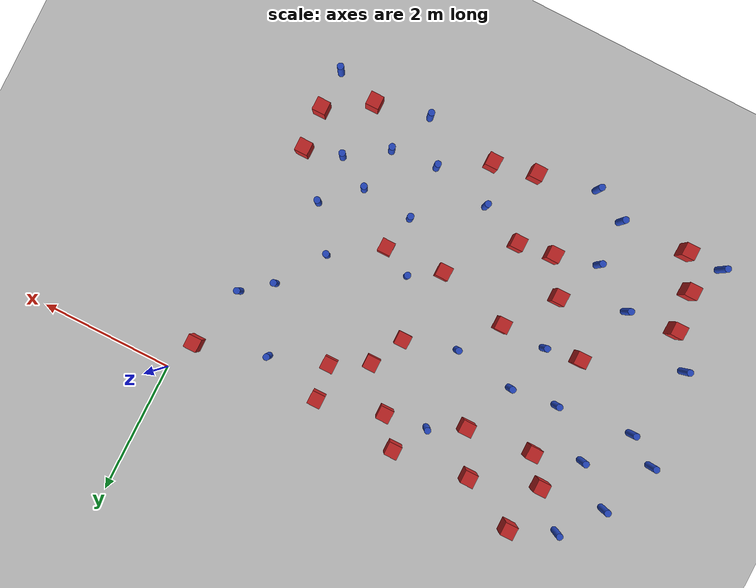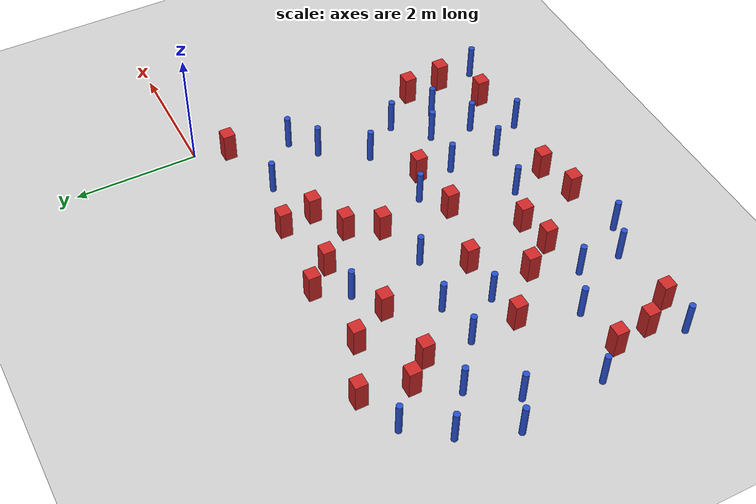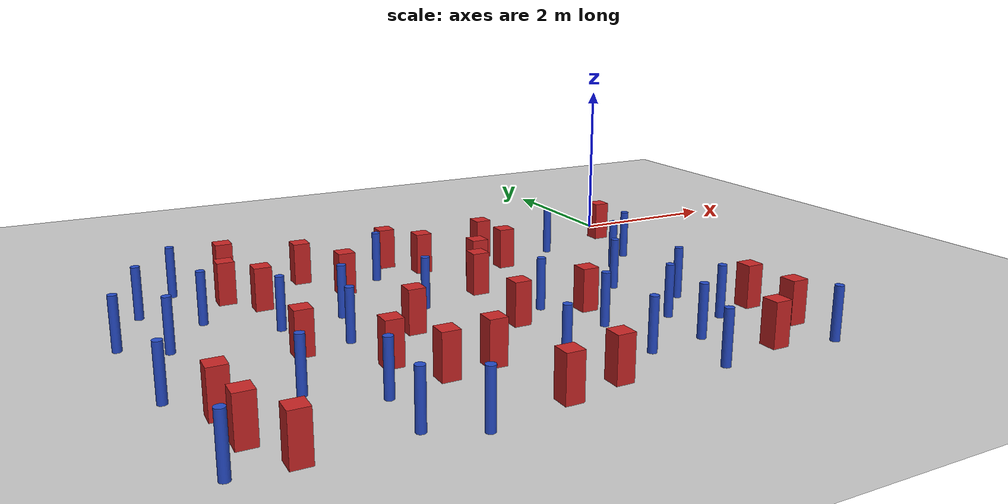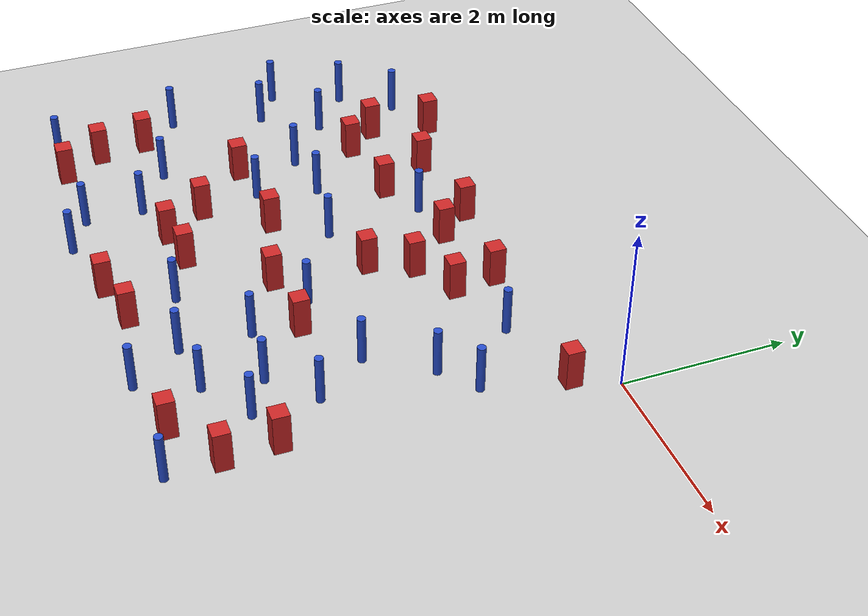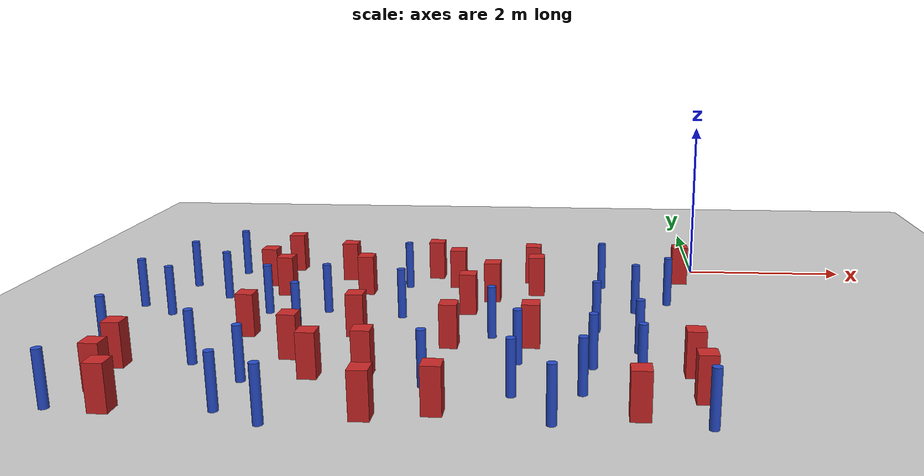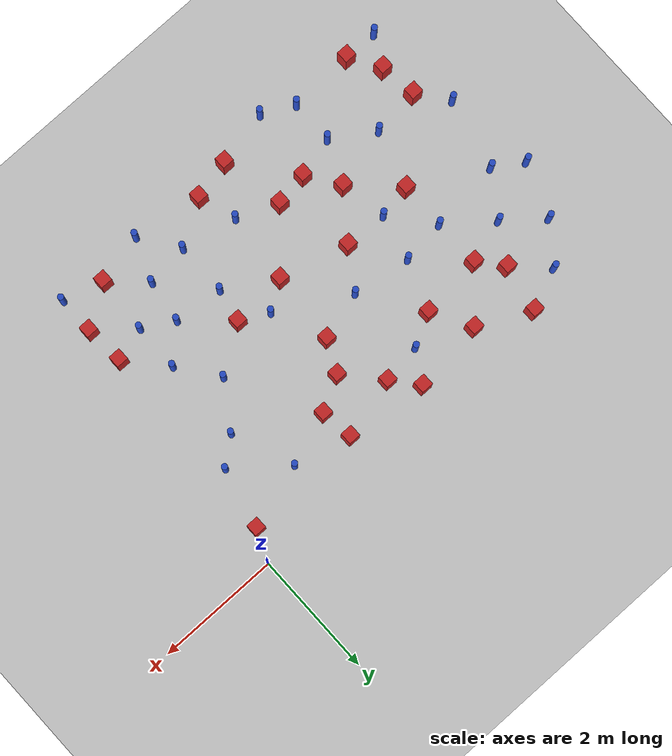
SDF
<sdf version="1.6">
 <world name="default">
  <model name="ground_plane">
   <static>1</static>
   <link name="link">
    <collision name="collision">
     <geometry><plane><normal>0 0 1</normal><size>100 100</size></plane></geometry>
     <surface><friction><ode><mu>100</mu><mu2>50</mu2></ode></friction></surface>
    </collision>
    <visual name="visual">
     <cast_shadows>0</cast_shadows>
     <geometry><plane><normal>0 0 1</normal><size>100 100</size></plane></geometry>
     <material>
      <ambient>1.0 1.0 1.0 1.0</ambient>
      <diffuse>0.8 0.8 0.8 1.0</diffuse>
      <specular>0.01 0.01 0.01 1.000000</specular>
     </material>
    </visual>
   </link>
  </model>
  <model name="square_post_obstacle1">
   <static>true</static>
   <pose>-5.9665953914 -4.91528763904 1.91545236811e-07 -7.35059704564e-06 1.12565212e-07 2.39332434364e-05</pose>
   <link name="link">
    <pose>0 0 0.25 0 -0 0</pose>
    <inertial>
     <mass>100</mass>
     <inertia>
      <ixx>0.166667</ixx>
      <ixy>0</ixy>
      <ixz>0</ixz>
      <iyy>0.166667</iyy>
      <iyz>0</iyz>
      <izz>0.166667</izz>
     </inertia>
    </inertial>
    <collision name="collision"><geometry><box><size>.2 .2 .5</size></box></geometry></collision>
    <visual name="visual">
     <geometry><box><size>.2 .2 .5</size></box></geometry>
     <material>
      <script><name>Gazebo/Red</name><uri>file://media/materials/scripts/gazebo.material</uri></script>
     </material>
    </visual>
   </link>
  </model>
  <model name="pole_obstacle6">
   <static>true</static>
   <pose>-1.34297444694 -2.51298891323 7.38925637345e-09 -8.47170692799e-08 1.24976765053e-08 -1.74513093017e-07</pose>
   <link name="link">
    <pose>0 0 0.3 0 -0 0</pose>
    <inertial>
     <mass>1</mass>
     <inertia><ixx>0.145833</ixx><ixy>0</ixy><ixz>0</ixz><iyy>0.145833</iyy><iyz>0</iyz><izz>0.125</izz></inertia>
    </inertial>
    <collision name="collision">
     <geometry><cylinder><radius>0.05</radius><length>.6</length></cylinder></geometry>
    </collision>
    <visual name="visual">
     <geometry><cylinder><radius>0.05</radius><length>.6</length></cylinder></geometry>
     <material>
      <script><name>Gazebo/Blue</name><uri>file://media/materials/scripts/gazebo.material</uri></script>
     </material>
    </visual>
   </link>
  </model>
  <model name="square_post_obstacle6">
   <static>true</static>
   <pose>-6.26178167945 -4.42269500261 1.91545236811e-07 -7.35059704564e-06 1.12565212e-07 2.39332434364e-05</pose>
   <link name="link">
    <pose>0 0 0.25 0 -0 0</pose>
    <inertial>
     <mass>100</mass>
     <inertia>
      <ixx>0.166667</ixx>
      <ixy>0</ixy>
      <ixz>0</ixz>
      <iyy>0.166667</iyy>
      <iyz>0</iyz>
      <izz>0.166667</izz>
     </inertia>
    </inertial>
    <collision name="collision"><geometry><box><size>.2 .2 .5</size></box></geometry></collision>
    <visual name="visual">
     <geometry><box><size>.2 .2 .5</size></box></geometry>
     <material>
      <script><name>Gazebo/Red</name><uri>file://media/materials/scripts/gazebo.material</uri></script>
     </material>
    </visual>
   </link>
  </model>
  <model name="pole_obstacle14">
   <static>true</static>
   <pose>-3.07545516667 -4.19201038177 7.38925637345e-09 -8.47170692794e-08 1.24976764468e-08 -1.7451309304e-07</pose>
   <link name="link">
    <pose>0 0 0.3 0 -0 0</pose>
    <inertial>
     <mass>1</mass>
     <inertia><ixx>0.145833</ixx><ixy>0</ixy><ixz>0</ixz><iyy>0.145833</iyy><iyz>0</iyz><izz>0.125</izz></inertia>
    </inertial>
    <collision name="collision">
     <geometry><cylinder><radius>0.05</radius><length>.6</length></cylinder></geometry>
    </collision>
    <visual name="visual">
     <geometry><cylinder><radius>0.05</radius><length>.6</length></cylinder></geometry>
     <material>
      <script><name>Gazebo/Blue</name><uri>file://media/materials/scripts/gazebo.material</uri></script>
     </material>
    </visual>
   </link>
  </model>
  <model name="pole_obstacle15">
   <static>true</static>
   <pose>-0.898604787767 -3.89439577498 7.38925637345e-09 -8.47170692799e-08 1.2497676509e-08 -1.74513093016e-07</pose>
   <link name="link">
    <pose>0 0 0.3 0 -0 0</pose>
    <inertial>
     <mass>1</mass>
     <inertia><ixx>0.145833</ixx><ixy>0</ixy><ixz>0</ixz><iyy>0.145833</iyy><iyz>0</iyz><izz>0.125</izz></inertia>
    </inertial>
    <collision name="collision">
     <geometry><cylinder><radius>0.05</radius><length>.6</length></cylinder></geometry>
    </collision>
    <visual name="visual">
     <geometry><cylinder><radius>0.05</radius><length>.6</length></cylinder></geometry>
     <material>
      <script><name>Gazebo/Blue</name><uri>file://media/materials/scripts/gazebo.material</uri></script>
     </material>
    </visual>
   </link>
  </model>
  <model name="pole_obstacle18">
   <static>true</static>
   <pose>-0.885350081492 -3.13839814819 7.38925637345e-09 -8.47170692799e-08 1.2497676509e-08 -1.74513093016e-07</pose>
   <link name="link">
    <pose>0 0 0.3 0 -0 0</pose>
    <inertial>
     <mass>1</mass>
     <inertia><ixx>0.145833</ixx><ixy>0</ixy><ixz>0</ixz><iyy>0.145833</iyy><iyz>0</iyz><izz>0.125</izz></inertia>
    </inertial>
    <collision name="collision">
     <geometry><cylinder><radius>0.05</radius><length>.6</length></cylinder></geometry>
    </collision>
    <visual name="visual">
     <geometry><cylinder><radius>0.05</radius><length>.6</length></cylinder></geometry>
     <material>
      <script><name>Gazebo/Blue</name><uri>file://media/materials/scripts/gazebo.material</uri></script>
     </material>
    </visual>
   </link>
  </model>
  <model name="pole_obstacle20">
   <static>true</static>
   <pose>-6.72067759787 -3.35733586468 7.38925637345e-09 -8.47170692798e-08 1.24976764937e-08 -1.74513093023e-07</pose>
   <link name="link">
    <pose>0 0 0.3 0 -0 0</pose>
    <inertial>
     <mass>1</mass>
     <inertia><ixx>0.145833</ixx><ixy>0</ixy><ixz>0</ixz><iyy>0.145833</iyy><iyz>0</iyz><izz>0.125</izz></inertia>
    </inertial>
    <collision name="collision">
     <geometry><cylinder><radius>0.05</radius><length>.6</length></cylinder></geometry>
    </collision>
    <visual name="visual">
     <geometry><cylinder><radius>0.05</radius><length>.6</length></cylinder></geometry>
     <material>
      <script><name>Gazebo/Blue</name><uri>file://media/materials/scripts/gazebo.material</uri></script>
     </material>
    </visual>
   </link>
  </model>
  <model name="pole_obstacle29">
   <static>true</static>
   <pose>-1.49146786509 -4.29631459783 7.38925637345e-09 -8.47170692799e-08 1.24976765033e-08 -1.74513093018e-07</pose>
   <link name="link">
    <pose>0 0 0.3 0 -0 0</pose>
    <inertial>
     <mass>1</mass>
     <inertia><ixx>0.145833</ixx><ixy>0</ixy><ixz>0</ixz><iyy>0.145833</iyy><iyz>0</iyz><izz>0.125</izz></inertia>
    </inertial>
    <collision name="collision">
     <geometry><cylinder><radius>0.05</radius><length>.6</length></cylinder></geometry>
    </collision>
    <visual name="visual">
     <geometry><cylinder><radius>0.05</radius><length>.6</length></cylinder></geometry>
     <material>
      <script><name>Gazebo/Blue</name><uri>file://media/materials/scripts/gazebo.material</uri></script>
     </material>
    </visual>
   </link>
  </model>
  <model name="square_post_obstacle27">
   <static>true</static>
   <pose>-4.62665792929 -0.576814760097 1.91545236811e-07 -7.35059704564e-06 1.12565212e-07 2.39332434364e-05</pose>
   <link name="link">
    <pose>0 0 0.25 0 -0 0</pose>
    <inertial>
     <mass>100</mass>
     <inertia>
      <ixx>0.166667</ixx>
      <ixy>0</ixy>
      <ixz>0</ixz>
      <iyy>0.166667</iyy>
      <iyz>0</iyz>
      <izz>0.166667</izz>
     </inertia>
    </inertial>
    <collision name="collision"><geometry><box><size>.2 .2 .5</size></box></geometry></collision>
    <visual name="visual">
     <geometry><box><size>.2 .2 .5</size></box></geometry>
     <material>
      <script><name>Gazebo/Red</name><uri>file://media/materials/scripts/gazebo.material</uri></script>
     </material>
    </visual>
   </link>
  </model>
  <model name="pole_obstacle41">
   <static>true</static>
   <pose>-1.25619150162 -0.82417308649 7.38925637345e-09 -8.47170692799e-08 1.24976765075e-08 -1.74513093017e-07</pose>
   <link name="link">
    <pose>0 0 0.3 0 -0 0</pose>
    <inertial>
     <mass>1</mass>
     <inertia><ixx>0.145833</ixx><ixy>0</ixy><ixz>0</ixz><iyy>0.145833</iyy><iyz>0</iyz><izz>0.125</izz></inertia>
    </inertial>
    <collision name="collision">
     <geometry><cylinder><radius>0.05</radius><length>.6</length></cylinder></geometry>
    </collision>
    <visual name="visual">
     <geometry><cylinder><radius>0.05</radius><length>.6</length></cylinder></geometry>
     <material>
      <script><name>Gazebo/Blue</name><uri>file://media/materials/scripts/gazebo.material</uri></script>
     </material>
    </visual>
   </link>
  </model>
  <model name="square_post_obstacle35">
   <static>true</static>
   <pose>-3.72417909975 -3.91523699357 1.91545236811e-07 -7.35059704564e-06 1.12565212e-07 2.39332434364e-05</pose>
   <link name="link">
    <pose>0 0 0.25 0 -0 0</pose>
    <inertial>
     <mass>100</mass>
     <inertia>
      <ixx>0.166667</ixx>
      <ixy>0</ixy>
      <ixz>0</ixz>
      <iyy>0.166667</iyy>
      <iyz>0</iyz>
      <izz>0.166667</izz>
     </inertia>
    </inertial>
    <collision name="collision"><geometry><box><size>.2 .2 .5</size></box></geometry></collision>
    <visual name="visual">
     <geometry><box><size>.2 .2 .5</size></box></geometry>
     <material>
      <script><name>Gazebo/Red</name><uri>file://media/materials/scripts/gazebo.material</uri></script>
     </material>
    </visual>
   </link>
  </model>
  <model name="pole_obstacle46">
   <static>true</static>
   <pose>-5.99376689628 -1.52722841999 7.38925637345e-09 -8.471706928e-08 1.24976765134e-08 -1.74513093015e-07</pose>
   <link name="link">
    <pose>0 0 0.3 0 -0 0</pose>
    <inertial>
     <mass>1</mass>
     <inertia><ixx>0.145833</ixx><ixy>0</ixy><ixz>0</ixz><iyy>0.145833</iyy><iyz>0</iyz><izz>0.125</izz></inertia>
    </inertial>
    <collision name="collision">
     <geometry><cylinder><radius>0.05</radius><length>.6</length></cylinder></geometry>
    </collision>
    <visual name="visual">
     <geometry><cylinder><radius>0.05</radius><length>.6</length></cylinder></geometry>
     <material>
      <script><name>Gazebo/Blue</name><uri>file://media/materials/scripts/gazebo.material</uri></script>
     </material>
    </visual>
   </link>
  </model>
  <model name="pole_obstacle50">
   <static>true</static>
   <pose>-0.453944152029 -1.47232478835 7.38925637345e-09 -8.47170692798e-08 1.24976765013e-08 -1.7451309302e-07</pose>
   <link name="link">
    <pose>0 0 0.3 0 -0 0</pose>
    <inertial>
     <mass>1</mass>
     <inertia><ixx>0.145833</ixx><ixy>0</ixy><ixz>0</ixz><iyy>0.145833</iyy><iyz>0</iyz><izz>0.125</izz></inertia>
    </inertial>
    <collision name="collision">
     <geometry><cylinder><radius>0.05</radius><length>.6</length></cylinder></geometry>
    </collision>
    <visual name="visual">
     <geometry><cylinder><radius>0.05</radius><length>.6</length></cylinder></geometry>
     <material>
      <script><name>Gazebo/Blue</name><uri>file://media/materials/scripts/gazebo.material</uri></script>
     </material>
    </visual>
   </link>
  </model>
  <model name="square_post_obstacle43">
   <static>true</static>
   <pose>-5.29275886241 -2.82763483217 1.91545236811e-07 -7.35059704564e-06 1.12565212e-07 2.39332434364e-05</pose>
   <link name="link">
    <pose>0 0 0.25 0 -0 0</pose>
    <inertial>
     <mass>100</mass>
     <inertia>
      <ixx>0.166667</ixx>
      <ixy>0</ixy>
      <ixz>0</ixz>
      <iyy>0.166667</iyy>
      <iyz>0</iyz>
      <izz>0.166667</izz>
     </inertia>
    </inertial>
    <collision name="collision"><geometry><box><size>.2 .2 .5</size></box></geometry></collision>
    <visual name="visual">
     <geometry><box><size>.2 .2 .5</size></box></geometry>
     <material>
      <script><name>Gazebo/Red</name><uri>file://media/materials/scripts/gazebo.material</uri></script>
     </material>
    </visual>
   </link>
  </model>
  <model name="pole_obstacle61">
   <static>true</static>
   <pose>-6.91969139833 -1.91432501296 7.38925637345e-09 -8.471706928e-08 1.24976765134e-08 -1.74513093015e-07</pose>
   <link name="link">
    <pose>0 0 0.3 0 -0 0</pose>
    <inertial>
     <mass>1</mass>
     <inertia><ixx>0.145833</ixx><ixy>0</ixy><ixz>0</ixz><iyy>0.145833</iyy><iyz>0</iyz><izz>0.125</izz></inertia>
    </inertial>
    <collision name="collision">
     <geometry><cylinder><radius>0.05</radius><length>.6</length></cylinder></geometry>
    </collision>
    <visual name="visual">
     <geometry><cylinder><radius>0.05</radius><length>.6</length></cylinder></geometry>
     <material>
      <script><name>Gazebo/Blue</name><uri>file://media/materials/scripts/gazebo.material</uri></script>
     </material>
    </visual>
   </link>
  </model>
  <model name="square_post_obstacle59">
   <static>true</static>
   <pose>-2.06392335858 -2.99747650352 1.91545236811e-07 -7.35059704564e-06 1.12565212e-07 2.39332434364e-05</pose>
   <link name="link">
    <pose>0 0 0.25 0 -0 0</pose>
    <inertial>
     <mass>100</mass>
     <inertia>
      <ixx>0.166667</ixx>
      <ixy>0</ixy>
      <ixz>0</ixz>
      <iyy>0.166667</iyy>
      <iyz>0</iyz>
      <izz>0.166667</izz>
     </inertia>
    </inertial>
    <collision name="collision"><geometry><box><size>.2 .2 .5</size></box></geometry></collision>
    <visual name="visual">
     <geometry><box><size>.2 .2 .5</size></box></geometry>
     <material>
      <script><name>Gazebo/Red</name><uri>file://media/materials/scripts/gazebo.material</uri></script>
     </material>
    </visual>
   </link>
  </model>
  <model name="pole_obstacle81">
   <static>true</static>
   <pose>-0.318635826672 -4.98049582709 7.38925637345e-09 -8.471706928e-08 1.24976765079e-08 -1.74513093015e-07</pose>
   <link name="link">
    <pose>0 0 0.3 0 -0 0</pose>
    <inertial>
     <mass>1</mass>
     <inertia><ixx>0.145833</ixx><ixy>0</ixy><ixz>0</ixz><iyy>0.145833</iyy><iyz>0</iyz><izz>0.125</izz></inertia>
    </inertial>
    <collision name="collision">
     <geometry><cylinder><radius>0.05</radius><length>.6</length></cylinder></geometry>
    </collision>
    <visual name="visual">
     <geometry><cylinder><radius>0.05</radius><length>.6</length></cylinder></geometry>
     <material>
      <script><name>Gazebo/Blue</name><uri>file://media/materials/scripts/gazebo.material</uri></script>
     </material>
    </visual>
   </link>
  </model>
  <model name="square_post_obstacle72">
   <static>true</static>
   <pose>-2.09253523566 -1.12056770915 1.91545236811e-07 -7.35059704564e-06 1.12565212e-07 2.39332434364e-05</pose>
   <link name="link">
    <pose>0 0 0.25 0 -0 0</pose>
    <inertial>
     <mass>100</mass>
     <inertia>
      <ixx>0.166667</ixx>
      <ixy>0</ixy>
      <ixz>0</ixz>
      <iyy>0.166667</iyy>
      <iyz>0</iyz>
      <izz>0.166667</izz>
     </inertia>
    </inertial>
    <collision name="collision"><geometry><box><size>.2 .2 .5</size></box></geometry></collision>
    <visual name="visual">
     <geometry><box><size>.2 .2 .5</size></box></geometry>
     <material>
      <script><name>Gazebo/Red</name><uri>file://media/materials/scripts/gazebo.material</uri></script>
     </material>
    </visual>
   </link>
  </model>
  <model name="square_post_obstacle74">
   <static>true</static>
   <pose>-5.61669726903 -0.928070456622 1.91545236811e-07 -7.35059704564e-06 1.12565212e-07 2.39332434364e-05</pose>
   <link name="link">
    <pose>0 0 0.25 0 -0 0</pose>
    <inertial>
     <mass>100</mass>
     <inertia>
      <ixx>0.166667</ixx>
      <ixy>0</ixy>
      <ixz>0</ixz>
      <iyy>0.166667</iyy>
      <iyz>0</iyz>
      <izz>0.166667</izz>
     </inertia>
    </inertial>
    <collision name="collision"><geometry><box><size>.2 .2 .5</size></box></geometry></collision>
    <visual name="visual">
     <geometry><box><size>.2 .2 .5</size></box></geometry>
     <material>
      <script><name>Gazebo/Red</name><uri>file://media/materials/scripts/gazebo.material</uri></script>
     </material>
    </visual>
   </link>
  </model>
  <model name="pole_obstacle98">
   <static>true</static>
   <pose>-4.9206498968 -4.8788065518 7.38925637345e-09 -8.47170692796e-08 1.24976764786e-08 -1.74513093032e-07</pose>
   <link name="link">
    <pose>0 0 0.3 0 -0 0</pose>
    <inertial>
     <mass>1</mass>
     <inertia><ixx>0.145833</ixx><ixy>0</ixy><ixz>0</ixz><iyy>0.145833</iyy><iyz>0</iyz><izz>0.125</izz></inertia>
    </inertial>
    <collision name="collision">
     <geometry><cylinder><radius>0.05</radius><length>.6</length></cylinder></geometry>
    </collision>
    <visual name="visual">
     <geometry><cylinder><radius>0.05</radius><length>.6</length></cylinder></geometry>
     <material>
      <script><name>Gazebo/Blue</name><uri>file://media/materials/scripts/gazebo.material</uri></script>
     </material>
    </visual>
   </link>
  </model>
  <model name="pole_obstacle99">
   <static>true</static>
   <pose>-5.29137952723 -2.07930860232 7.38925637345e-09 -8.47170692798e-08 1.24976764937e-08 -1.74513093023e-07</pose>
   <link name="link">
    <pose>0 0 0.3 0 -0 0</pose>
    <inertial>
     <mass>1</mass>
     <inertia><ixx>0.145833</ixx><ixy>0</ixy><ixz>0</ixz><iyy>0.145833</iyy><iyz>0</iyz><izz>0.125</izz></inertia>
    </inertial>
    <collision name="collision">
     <geometry><cylinder><radius>0.05</radius><length>.6</length></cylinder></geometry>
    </collision>
    <visual name="visual">
     <geometry><cylinder><radius>0.05</radius><length>.6</length></cylinder></geometry>
     <material>
      <script><name>Gazebo/Blue</name><uri>file://media/materials/scripts/gazebo.material</uri></script>
     </material>
    </visual>
   </link>
  </model>
  <model name="square_post_obstacle90">
   <static>true</static>
   <pose>-0.220753854092 -0.512005402692 1.91545236811e-07 -7.35059704564e-06 1.12565212e-07 2.39332434364e-05</pose>
   <link name="link">
    <pose>0 0 0.25 0 -0 0</pose>
    <inertial>
     <mass>100</mass>
     <inertia>
      <ixx>0.166667</ixx>
      <ixy>0</ixy>
      <ixz>0</ixz>
      <iyy>0.166667</iyy>
      <iyz>0</iyz>
      <izz>0.166667</izz>
     </inertia>
    </inertial>
    <collision name="collision"><geometry><box><size>.2 .2 .5</size></box></geometry></collision>
    <visual name="visual">
     <geometry><box><size>.2 .2 .5</size></box></geometry>
     <material>
      <script><name>Gazebo/Red</name><uri>file://media/materials/scripts/gazebo.material</uri></script>
     </material>
    </visual>
   </link>
  </model>
  <model name="pole_obstacle101">
   <static>true</static>
   <pose>-2.51668406593 -2.76872930905 7.38925637345e-09 -8.47170692798e-08 1.24976764939e-08 -1.74513093025e-07</pose>
   <link name="link">
    <pose>0 0 0.3 0 -0 0</pose>
    <inertial>
     <mass>1</mass>
     <inertia><ixx>0.145833</ixx><ixy>0</ixy><ixz>0</ixz><iyy>0.145833</iyy><iyz>0</iyz><izz>0.125</izz></inertia>
    </inertial>
    <collision name="collision">
     <geometry><cylinder><radius>0.05</radius><length>.6</length></cylinder></geometry>
    </collision>
    <visual name="visual">
     <geometry><cylinder><radius>0.05</radius><length>.6</length></cylinder></geometry>
     <material>
      <script><name>Gazebo/Blue</name><uri>file://media/materials/scripts/gazebo.material</uri></script>
     </material>
    </visual>
   </link>
  </model>
  <model name="pole_obstacle107">
   <static>true</static>
   <pose>-1.76943010486 -4.98240096241 7.38925637345e-09 -8.47170692799e-08 1.24976765033e-08 -1.74513093018e-07</pose>
   <link name="link">
    <pose>0 0 0.3 0 -0 0</pose>
    <inertial>
     <mass>1</mass>
     <inertia><ixx>0.145833</ixx><ixy>0</ixy><ixz>0</ixz><iyy>0.145833</iyy><iyz>0</iyz><izz>0.125</izz></inertia>
    </inertial>
    <collision name="collision">
     <geometry><cylinder><radius>0.05</radius><length>.6</length></cylinder></geometry>
    </collision>
    <visual name="visual">
     <geometry><cylinder><radius>0.05</radius><length>.6</length></cylinder></geometry>
     <material>
      <script><name>Gazebo/Blue</name><uri>file://media/materials/scripts/gazebo.material</uri></script>
     </material>
    </visual>
   </link>
  </model>
  <model name="square_post_obstacle105">
   <static>true</static>
   <pose>-4.06142930733 -2.76066638361 1.91545236811e-07 -7.35059704564e-06 1.12565212e-07 2.39332434364e-05</pose>
   <link name="link">
    <pose>0 0 0.25 0 -0 0</pose>
    <inertial>
     <mass>100</mass>
     <inertia>
      <ixx>0.166667</ixx>
      <ixy>0</ixy>
      <ixz>0</ixz>
      <iyy>0.166667</iyy>
      <iyz>0</iyz>
      <izz>0.166667</izz>
     </inertia>
    </inertial>
    <collision name="collision"><geometry><box><size>.2 .2 .5</size></box></geometry></collision>
    <visual name="visual">
     <geometry><box><size>.2 .2 .5</size></box></geometry>
     <material>
      <script><name>Gazebo/Red</name><uri>file://media/materials/scripts/gazebo.material</uri></script>
     </material>
    </visual>
   </link>
  </model>
  <model name="square_post_obstacle109">
   <static>true</static>
   <pose>-3.47151218805 -0.443176530957 1.91545236811e-07 -7.35059704564e-06 1.12565212e-07 2.39332434364e-05</pose>
   <link name="link">
    <pose>0 0 0.25 0 -0 0</pose>
    <inertial>
     <mass>100</mass>
     <inertia>
      <ixx>0.166667</ixx>
      <ixy>0</ixy>
      <ixz>0</ixz>
      <iyy>0.166667</iyy>
      <iyz>0</iyz>
      <izz>0.166667</izz>
     </inertia>
    </inertial>
    <collision name="collision"><geometry><box><size>.2 .2 .5</size></box></geometry></collision>
    <visual name="visual">
     <geometry><box><size>.2 .2 .5</size></box></geometry>
     <material>
      <script><name>Gazebo/Red</name><uri>file://media/materials/scripts/gazebo.material</uri></script>
     </material>
    </visual>
   </link>
  </model>
  <model name="square_post_obstacle121">
   <static>true</static>
   <pose>-4.6113617156 -3.48484949745 1.91545236811e-07 -7.35059704564e-06 1.12565212e-07 2.39332434364e-05</pose>
   <link name="link">
    <pose>0 0 0.25 0 -0 0</pose>
    <inertial>
     <mass>100</mass>
     <inertia>
      <ixx>0.166667</ixx>
      <ixy>0</ixy>
      <ixz>0</ixz>
      <iyy>0.166667</iyy>
      <iyz>0</iyz>
      <izz>0.166667</izz>
     </inertia>
    </inertial>
    <collision name="collision"><geometry><box><size>.2 .2 .5</size></box></geometry></collision>
    <visual name="visual">
     <geometry><box><size>.2 .2 .5</size></box></geometry>
     <material>
      <script><name>Gazebo/Red</name><uri>file://media/materials/scripts/gazebo.material</uri></script>
     </material>
    </visual>
   </link>
  </model>
  <model name="pole_obstacle124">
   <static>true</static>
   <pose>-0.867034689101 -1.8082081701 7.38925637345e-09 -8.47170692799e-08 1.24976765033e-08 -1.7451309302e-07</pose>
   <link name="link">
    <pose>0 0 0.3 0 -0 0</pose>
    <inertial>
     <mass>1</mass>
     <inertia><ixx>0.145833</ixx><ixy>0</ixy><ixz>0</ixz><iyy>0.145833</iyy><iyz>0</iyz><izz>0.125</izz></inertia>
    </inertial>
    <collision name="collision">
     <geometry><cylinder><radius>0.05</radius><length>.6</length></cylinder></geometry>
    </collision>
    <visual name="visual">
     <geometry><cylinder><radius>0.05</radius><length>.6</length></cylinder></geometry>
     <material>
      <script><name>Gazebo/Blue</name><uri>file://media/materials/scripts/gazebo.material</uri></script>
     </material>
    </visual>
   </link>
  </model>
  <model name="pole_obstacle136">
   <static>true</static>
   <pose>-1.38850623863 -3.61622420832 7.38925637345e-09 -8.47170692799e-08 1.24976765053e-08 -1.74513093017e-07</pose>
   <link name="link">
    <pose>0 0 0.3 0 -0 0</pose>
    <inertial>
     <mass>1</mass>
     <inertia><ixx>0.145833</ixx><ixy>0</ixy><ixz>0</ixz><iyy>0.145833</iyy><iyz>0</iyz><izz>0.125</izz></inertia>
    </inertial>
    <collision name="collision">
     <geometry><cylinder><radius>0.05</radius><length>.6</length></cylinder></geometry>
    </collision>
    <visual name="visual">
     <geometry><cylinder><radius>0.05</radius><length>.6</length></cylinder></geometry>
     <material>
      <script><name>Gazebo/Blue</name><uri>file://media/materials/scripts/gazebo.material</uri></script>
     </material>
    </visual>
   </link>
  </model>
  <model name="square_post_obstacle136">
   <static>true</static>
   <pose>-6.33937242744 -3.82792688996 1.91545236811e-07 -7.35059704564e-06 1.12565212e-07 2.39332434364e-05</pose>
   <link name="link">
    <pose>0 0 0.25 0 -0 0</pose>
    <inertial>
     <mass>100</mass>
     <inertia>
      <ixx>0.166667</ixx>
      <ixy>0</ixy>
      <ixz>0</ixz>
      <iyy>0.166667</iyy>
      <iyz>0</iyz>
      <izz>0.166667</izz>
     </inertia>
    </inertial>
    <collision name="collision"><geometry><box><size>.2 .2 .5</size></box></geometry></collision>
    <visual name="visual">
     <geometry><box><size>.2 .2 .5</size></box></geometry>
     <material>
      <script><name>Gazebo/Red</name><uri>file://media/materials/scripts/gazebo.material</uri></script>
     </material>
    </visual>
   </link>
  </model>
  <model name="square_post_obstacle137">
   <static>true</static>
   <pose>-2.6310140548 -1.41466564747 1.91545236811e-07 -7.35059704564e-06 1.12565212e-07 2.39332434364e-05</pose>
   <link name="link">
    <pose>0 0 0.25 0 -0 0</pose>
    <inertial>
     <mass>100</mass>
     <inertia>
      <ixx>0.166667</ixx>
      <ixy>0</ixy>
      <ixz>0</ixz>
      <iyy>0.166667</iyy>
      <iyz>0</iyz>
      <izz>0.166667</izz>
     </inertia>
    </inertial>
    <collision name="collision"><geometry><box><size>.2 .2 .5</size></box></geometry></collision>
    <visual name="visual">
     <geometry><box><size>.2 .2 .5</size></box></geometry>
     <material>
      <script><name>Gazebo/Red</name><uri>file://media/materials/scripts/gazebo.material</uri></script>
     </material>
    </visual>
   </link>
  </model>
  <model name="pole_obstacle142">
   <static>true</static>
   <pose>-4.75733904757 -2.74081186531 7.38925637345e-09 -8.47170692798e-08 1.24976764937e-08 -1.74513093023e-07</pose>
   <link name="link">
    <pose>0 0 0.3 0 -0 0</pose>
    <inertial>
     <mass>1</mass>
     <inertia><ixx>0.145833</ixx><ixy>0</ixy><ixz>0</ixz><iyy>0.145833</iyy><iyz>0</iyz><izz>0.125</izz></inertia>
    </inertial>
    <collision name="collision">
     <geometry><cylinder><radius>0.05</radius><length>.6</length></cylinder></geometry>
    </collision>
    <visual name="visual">
     <geometry><cylinder><radius>0.05</radius><length>.6</length></cylinder></geometry>
     <material>
      <script><name>Gazebo/Blue</name><uri>file://media/materials/scripts/gazebo.material</uri></script>
     </material>
    </visual>
   </link>
  </model>
  <model name="pole_obstacle146">
   <static>true</static>
   <pose>-2.18228824495 -4.37427057992 7.38925637345e-09 -8.47170692798e-08 1.24976765033e-08 -1.74513093019e-07</pose>
   <link name="link">
    <pose>0 0 0.3 0 -0 0</pose>
    <inertial>
     <mass>1</mass>
     <inertia><ixx>0.145833</ixx><ixy>0</ixy><ixz>0</ixz><iyy>0.145833</iyy><iyz>0</iyz><izz>0.125</izz></inertia>
    </inertial>
    <collision name="collision">
     <geometry><cylinder><radius>0.05</radius><length>.6</length></cylinder></geometry>
    </collision>
    <visual name="visual">
     <geometry><cylinder><radius>0.05</radius><length>.6</length></cylinder></geometry>
     <material>
      <script><name>Gazebo/Blue</name><uri>file://media/materials/scripts/gazebo.material</uri></script>
     </material>
    </visual>
   </link>
  </model>
  <model name="pole_obstacle150">
   <static>true</static>
   <pose>-3.77168111989 -0.933499570476 7.38925637345e-09 -8.471706928e-08 1.24976765177e-08 -1.74513093012e-07</pose>
   <link name="link">
    <pose>0 0 0.3 0 -0 0</pose>
    <inertial>
     <mass>1</mass>
     <inertia><ixx>0.145833</ixx><ixy>0</ixy><ixz>0</ixz><iyy>0.145833</iyy><iyz>0</iyz><izz>0.125</izz></inertia>
    </inertial>
    <collision name="collision">
     <geometry><cylinder><radius>0.05</radius><length>.6</length></cylinder></geometry>
    </collision>
    <visual name="visual">
     <geometry><cylinder><radius>0.05</radius><length>.6</length></cylinder></geometry>
     <material>
      <script><name>Gazebo/Blue</name><uri>file://media/materials/scripts/gazebo.material</uri></script>
     </material>
    </visual>
   </link>
  </model>
  <model name="square_post_obstacle145">
   <static>true</static>
   <pose>-4.26310953707 -3.99916581293 1.91545236811e-07 -7.35059704564e-06 1.12565212e-07 2.39332434364e-05</pose>
   <link name="link">
    <pose>0 0 0.25 0 -0 0</pose>
    <inertial>
     <mass>100</mass>
     <inertia>
      <ixx>0.166667</ixx>
      <ixy>0</ixy>
      <ixz>0</ixz>
      <iyy>0.166667</iyy>
      <iyz>0</iyz>
      <izz>0.166667</izz>
     </inertia>
    </inertial>
    <collision name="collision"><geometry><box><size>.2 .2 .5</size></box></geometry></collision>
    <visual name="visual">
     <geometry><box><size>.2 .2 .5</size></box></geometry>
     <material>
      <script><name>Gazebo/Red</name><uri>file://media/materials/scripts/gazebo.material</uri></script>
     </material>
    </visual>
   </link>
  </model>
  <model name="square_post_obstacle150">
   <static>true</static>
   <pose>-2.96222555149 -3.05649186935 1.91545236811e-07 -7.35059704564e-06 1.12565212e-07 2.39332434364e-05</pose>
   <link name="link">
    <pose>0 0 0.25 0 -0 0</pose>
    <inertial>
     <mass>100</mass>
     <inertia>
      <ixx>0.166667</ixx>
      <ixy>0</ixy>
      <ixz>0</ixz>
      <iyy>0.166667</iyy>
      <iyz>0</iyz>
      <izz>0.166667</izz>
     </inertia>
    </inertial>
    <collision name="collision"><geometry><box><size>.2 .2 .5</size></box></geometry></collision>
    <visual name="visual">
     <geometry><box><size>.2 .2 .5</size></box></geometry>
     <material>
      <script><name>Gazebo/Red</name><uri>file://media/materials/scripts/gazebo.material</uri></script>
     </material>
    </visual>
   </link>
  </model>
  <model name="pole_obstacle159">
   <static>true</static>
   <pose>-4.91276007358 -4.17387571632 7.38925637345e-09 -8.47170692796e-08 1.24976764786e-08 -1.74513093032e-07</pose>
   <link name="link">
    <pose>0 0 0.3 0 -0 0</pose>
    <inertial>
     <mass>1</mass>
     <inertia><ixx>0.145833</ixx><ixy>0</ixy><ixz>0</ixz><iyy>0.145833</iyy><iyz>0</iyz><izz>0.125</izz></inertia>
    </inertial>
    <collision name="collision">
     <geometry><cylinder><radius>0.05</radius><length>.6</length></cylinder></geometry>
    </collision>
    <visual name="visual">
     <geometry><cylinder><radius>0.05</radius><length>.6</length></cylinder></geometry>
     <material>
      <script><name>Gazebo/Blue</name><uri>file://media/materials/scripts/gazebo.material</uri></script>
     </material>
    </visual>
   </link>
  </model>
  <model name="pole_obstacle161">
   <static>true</static>
   <pose>-6.58614506836 -1.04851093051 7.38925637345e-09 -8.471706928e-08 1.24976765101e-08 -1.74513093015e-07</pose>
   <link name="link">
    <pose>0 0 0.3 0 -0 0</pose>
    <inertial>
     <mass>1</mass>
     <inertia><ixx>0.145833</ixx><ixy>0</ixy><ixz>0</ixz><iyy>0.145833</iyy><iyz>0</iyz><izz>0.125</izz></inertia>
    </inertial>
    <collision name="collision">
     <geometry><cylinder><radius>0.05</radius><length>.6</length></cylinder></geometry>
    </collision>
    <visual name="visual">
     <geometry><cylinder><radius>0.05</radius><length>.6</length></cylinder></geometry>
     <material>
      <script><name>Gazebo/Blue</name><uri>file://media/materials/scripts/gazebo.material</uri></script>
     </material>
    </visual>
   </link>
  </model>
  <model name="pole_obstacle162">
   <static>true</static>
   <pose>-6.12782548668 -0.441250665291 7.38925637345e-09 -8.47170692798e-08 1.24976765003e-08 -1.7451309302e-07</pose>
   <link name="link">
    <pose>0 0 0.3 0 -0 0</pose>
    <inertial>
     <mass>1</mass>
     <inertia><ixx>0.145833</ixx><ixy>0</ixy><ixz>0</ixz><iyy>0.145833</iyy><iyz>0</iyz><izz>0.125</izz></inertia>
    </inertial>
    <collision name="collision">
     <geometry><cylinder><radius>0.05</radius><length>.6</length></cylinder></geometry>
    </collision>
    <visual name="visual">
     <geometry><cylinder><radius>0.05</radius><length>.6</length></cylinder></geometry>
     <material>
      <script><name>Gazebo/Blue</name><uri>file://media/materials/scripts/gazebo.material</uri></script>
     </material>
    </visual>
   </link>
  </model>
  <model name="square_post_obstacle156">
   <static>true</static>
   <pose>-4.2762970276 -1.20666730393 1.91545236811e-07 -7.35059704564e-06 1.12565212e-07 2.39332434364e-05</pose>
   <link name="link">
    <pose>0 0 0.25 0 -0 0</pose>
    <inertial>
     <mass>100</mass>
     <inertia>
      <ixx>0.166667</ixx>
      <ixy>0</ixy>
      <ixz>0</ixz>
      <iyy>0.166667</iyy>
      <iyz>0</iyz>
      <izz>0.166667</izz>
     </inertia>
    </inertial>
    <collision name="collision"><geometry><box><size>.2 .2 .5</size></box></geometry></collision>
    <visual name="visual">
     <geometry><box><size>.2 .2 .5</size></box></geometry>
     <material>
      <script><name>Gazebo/Red</name><uri>file://media/materials/scripts/gazebo.material</uri></script>
     </material>
    </visual>
   </link>
  </model>
  <model name="square_post_obstacle168">
   <static>true</static>
   <pose>-0.964861458707 -4.78723383157 1.91545236811e-07 -7.35059704564e-06 1.12565212e-07 2.39332434364e-05</pose>
   <link name="link">
    <pose>0 0 0.25 0 -0 0</pose>
    <inertial>
     <mass>100</mass>
     <inertia>
      <ixx>0.166667</ixx>
      <ixy>0</ixy>
      <ixz>0</ixz>
      <iyy>0.166667</iyy>
      <iyz>0</iyz>
      <izz>0.166667</izz>
     </inertia>
    </inertial>
    <collision name="collision"><geometry><box><size>.2 .2 .5</size></box></geometry></collision>
    <visual name="visual">
     <geometry><box><size>.2 .2 .5</size></box></geometry>
     <material>
      <script><name>Gazebo/Red</name><uri>file://media/materials/scripts/gazebo.material</uri></script>
     </material>
    </visual>
   </link>
  </model>
  <model name="square_post_obstacle172">
   <static>true</static>
   <pose>-2.16045845289 -0.59510986876 1.91545236811e-07 -7.35059704564e-06 1.12565212e-07 2.39332434364e-05</pose>
   <link name="link">
    <pose>0 0 0.25 0 -0 0</pose>
    <inertial>
     <mass>100</mass>
     <inertia>
      <ixx>0.166667</ixx>
      <ixy>0</ixy>
      <ixz>0</ixz>
      <iyy>0.166667</iyy>
      <iyz>0</iyz>
      <izz>0.166667</izz>
     </inertia>
    </inertial>
    <collision name="collision"><geometry><box><size>.2 .2 .5</size></box></geometry></collision>
    <visual name="visual">
     <geometry><box><size>.2 .2 .5</size></box></geometry>
     <material>
      <script><name>Gazebo/Red</name><uri>file://media/materials/scripts/gazebo.material</uri></script>
     </material>
    </visual>
   </link>
  </model>
  <model name="pole_obstacle179">
   <static>true</static>
   <pose>-6.45365916004 -2.20495858029 7.38925637345e-09 -8.47170692798e-08 1.24976764937e-08 -1.74513093023e-07</pose>
   <link name="link">
    <pose>0 0 0.3 0 -0 0</pose>
    <inertial>
     <mass>1</mass>
     <inertia><ixx>0.145833</ixx><ixy>0</ixy><ixz>0</ixz><iyy>0.145833</iyy><iyz>0</iyz><izz>0.125</izz></inertia>
    </inertial>
    <collision name="collision">
     <geometry><cylinder><radius>0.05</radius><length>.6</length></cylinder></geometry>
    </collision>
    <visual name="visual">
     <geometry><cylinder><radius>0.05</radius><length>.6</length></cylinder></geometry>
     <material>
      <script><name>Gazebo/Blue</name><uri>file://media/materials/scripts/gazebo.material</uri></script>
     </material>
    </visual>
   </link>
  </model>
  <model name="square_post_obstacle178">
   <static>true</static>
   <pose>-5.29379480085 -1.31139139884 1.91545236811e-07 -7.35059704564e-06 1.12565212e-07 2.39332434364e-05</pose>
   <link name="link">
    <pose>0 0 0.25 0 -0 0</pose>
    <inertial>
     <mass>100</mass>
     <inertia>
      <ixx>0.166667</ixx>
      <ixy>0</ixy>
      <ixz>0</ixz>
      <iyy>0.166667</iyy>
      <iyz>0</iyz>
      <izz>0.166667</izz>
     </inertia>
    </inertial>
    <collision name="collision"><geometry><box><size>.2 .2 .5</size></box></geometry></collision>
    <visual name="visual">
     <geometry><box><size>.2 .2 .5</size></box></geometry>
     <material>
      <script><name>Gazebo/Red</name><uri>file://media/materials/scripts/gazebo.material</uri></script>
     </material>
    </visual>
   </link>
  </model>
  <model name="square_post_obstacle186">
   <static>true</static>
   <pose>-5.47103681924 -0.172901350283 1.91545236811e-07 -7.35059704564e-06 1.12565212e-07 2.39332434364e-05</pose>
   <link name="link">
    <pose>0 0 0.25 0 -0 0</pose>
    <inertial>
     <mass>100</mass>
     <inertia>
      <ixx>0.166667</ixx>
      <ixy>0</ixy>
      <ixz>0</ixz>
      <iyy>0.166667</iyy>
      <iyz>0</iyz>
      <izz>0.166667</izz>
     </inertia>
    </inertial>
    <collision name="collision"><geometry><box><size>.2 .2 .5</size></box></geometry></collision>
    <visual name="visual">
     <geometry><box><size>.2 .2 .5</size></box></geometry>
     <material>
      <script><name>Gazebo/Red</name><uri>file://media/materials/scripts/gazebo.material</uri></script>
     </material>
    </visual>
   </link>
  </model>
  <model name="square_post_obstacle187">
   <static>true</static>
   <pose>-3.51667542233 -4.93211447361 1.91545236811e-07 -7.35059704564e-06 1.12565212e-07 2.39332434364e-05</pose>
   <link name="link">
    <pose>0 0 0.25 0 -0 0</pose>
    <inertial>
     <mass>100</mass>
     <inertia>
      <ixx>0.166667</ixx>
      <ixy>0</ixy>
      <ixz>0</ixz>
      <iyy>0.166667</iyy>
      <iyz>0</iyz>
      <izz>0.166667</izz>
     </inertia>
    </inertial>
    <collision name="collision"><geometry><box><size>.2 .2 .5</size></box></geometry></collision>
    <visual name="visual">
     <geometry><box><size>.2 .2 .5</size></box></geometry>
     <material>
      <script><name>Gazebo/Red</name><uri>file://media/materials/scripts/gazebo.material</uri></script>
     </material>
    </visual>
   </link>
  </model>
  <model name="square_post_obstacle188">
   <static>true</static>
   <pose>-0.35789125374 -3.73919280678 1.91545236811e-07 -7.35059704564e-06 1.12565212e-07 2.39332434364e-05</pose>
   <link name="link">
    <pose>0 0 0.25 0 -0 0</pose>
    <inertial>
     <mass>100</mass>
     <inertia>
      <ixx>0.166667</ixx>
      <ixy>0</ixy>
      <ixz>0</ixz>
      <iyy>0.166667</iyy>
      <iyz>0</iyz>
      <izz>0.166667</izz>
     </inertia>
    </inertial>
    <collision name="collision"><geometry><box><size>.2 .2 .5</size></box></geometry></collision>
    <visual name="visual">
     <geometry><box><size>.2 .2 .5</size></box></geometry>
     <material>
      <script><name>Gazebo/Red</name><uri>file://media/materials/scripts/gazebo.material</uri></script>
     </material>
    </visual>
   </link>
  </model>
  <model name="square_post_obstacle190">
   <static>true</static>
   <pose>-2.87969414148 -1.91982523271 1.91545236811e-07 -7.35059704564e-06 1.12565212e-07 2.39332434364e-05</pose>
   <link name="link">
    <pose>0 0 0.25 0 -0 0</pose>
    <inertial>
     <mass>100</mass>
     <inertia>
      <ixx>0.166667</ixx>
      <ixy>0</ixy>
      <ixz>0</ixz>
      <iyy>0.166667</iyy>
      <iyz>0</iyz>
      <izz>0.166667</izz>
     </inertia>
    </inertial>
    <collision name="collision"><geometry><box><size>.2 .2 .5</size></box></geometry></collision>
    <visual name="visual">
     <geometry><box><size>.2 .2 .5</size></box></geometry>
     <material>
      <script><name>Gazebo/Red</name><uri>file://media/materials/scripts/gazebo.material</uri></script>
     </material>
    </visual>
   </link>
  </model>
  <model name="pole_obstacle191">
   <static>true</static>
   <pose>-6.52859038651 -4.91711690978 7.38925637345e-09 -8.47170692796e-08 1.24976764786e-08 -1.74513093032e-07</pose>
   <link name="link">
    <pose>0 0 0.3 0 -0 0</pose>
    <inertial>
     <mass>1</mass>
     <inertia><ixx>0.145833</ixx><ixy>0</ixy><ixz>0</ixz><iyy>0.145833</iyy><iyz>0</iyz><izz>0.125</izz></inertia>
    </inertial>
    <collision name="collision">
     <geometry><cylinder><radius>0.05</radius><length>.6</length></cylinder></geometry>
    </collision>
    <visual name="visual">
     <geometry><cylinder><radius>0.05</radius><length>.6</length></cylinder></geometry>
     <material>
      <script><name>Gazebo/Blue</name><uri>file://media/materials/scripts/gazebo.material</uri></script>
     </material>
    </visual>
   </link>
  </model>
  <model name="pole_obstacle195">
   <static>true</static>
   <pose>-4.58509298104 -1.99981715172 7.38925637345e-09 -8.47170692801e-08 1.24976765219e-08 -1.74513093009e-07</pose>
   <link name="link">
    <pose>0 0 0.3 0 -0 0</pose>
    <inertial>
     <mass>1</mass>
     <inertia><ixx>0.145833</ixx><ixy>0</ixy><ixz>0</ixz><iyy>0.145833</iyy><iyz>0</iyz><izz>0.125</izz></inertia>
    </inertial>
    <collision name="collision">
     <geometry><cylinder><radius>0.05</radius><length>.6</length></cylinder></geometry>
    </collision>
    <visual name="visual">
     <geometry><cylinder><radius>0.05</radius><length>.6</length></cylinder></geometry>
     <material>
      <script><name>Gazebo/Blue</name><uri>file://media/materials/scripts/gazebo.material</uri></script>
     </material>
    </visual>
   </link>
  </model>
  <model name="pole_obstacle197">
   <static>true</static>
   <pose>-2.17543560242 -3.53414212591 7.38925637345e-09 -8.47170692798e-08 1.24976764939e-08 -1.74513093025e-07</pose>
   <link name="link">
    <pose>0 0 0.3 0 -0 0</pose>
    <inertial>
     <mass>1</mass>
     <inertia><ixx>0.145833</ixx><ixy>0</ixy><ixz>0</ixz><iyy>0.145833</iyy><iyz>0</iyz><izz>0.125</izz></inertia>
    </inertial>
    <collision name="collision">
     <geometry><cylinder><radius>0.05</radius><length>.6</length></cylinder></geometry>
    </collision>
    <visual name="visual">
     <geometry><cylinder><radius>0.05</radius><length>.6</length></cylinder></geometry>
     <material>
      <script><name>Gazebo/Blue</name><uri>file://media/materials/scripts/gazebo.material</uri></script>
     </material>
    </visual>
   </link>
  </model>
  <model name="pole_obstacle198">
   <static>true</static>
   <pose>-4.40965823477 -5.13651642487 7.38925637345e-09 -8.47170692796e-08 1.24976764786e-08 -1.74513093032e-07</pose>
   <link name="link">
    <pose>0 0 0.3 0 -0 0</pose>
    <inertial>
     <mass>1</mass>
     <inertia><ixx>0.145833</ixx><ixy>0</ixy><ixz>0</ixz><iyy>0.145833</iyy><iyz>0</iyz><izz>0.125</izz></inertia>
    </inertial>
    <collision name="collision">
     <geometry><cylinder><radius>0.05</radius><length>.6</length></cylinder></geometry>
    </collision>
    <visual name="visual">
     <geometry><cylinder><radius>0.05</radius><length>.6</length></cylinder></geometry>
     <material>
      <script><name>Gazebo/Blue</name><uri>file://media/materials/scripts/gazebo.material</uri></script>
     </material>
    </visual>
   </link>
  </model>
  <model name="pole_obstacle215">
   <static>true</static>
   <pose>-5.57977765975 -3.75122265006 7.38925637345e-09 -8.47170692798e-08 1.24976764937e-08 -1.74513093023e-07</pose>
   <link name="link">
    <pose>0 0 0.3 0 -0 0</pose>
    <inertial>
     <mass>1</mass>
     <inertia><ixx>0.145833</ixx><ixy>0</ixy><ixz>0</ixz><iyy>0.145833</iyy><iyz>0</iyz><izz>0.125</izz></inertia>
    </inertial>
    <collision name="collision">
     <geometry><cylinder><radius>0.05</radius><length>.6</length></cylinder></geometry>
    </collision>
    <visual name="visual">
     <geometry><cylinder><radius>0.05</radius><length>.6</length></cylinder></geometry>
     <material>
      <script><name>Gazebo/Blue</name><uri>file://media/materials/scripts/gazebo.material</uri></script>
     </material>
    </visual>
   </link>
  </model>
  <model name="square_post_obstacle207">
   <static>true</static>
   <pose>-3.13265001056 -0.848410574398 1.91545236811e-07 -7.35059704564e-06 1.12565212e-07 2.39332434364e-05</pose>
   <link name="link">
    <pose>0 0 0.25 0 -0 0</pose>
    <inertial>
     <mass>100</mass>
     <inertia>
      <ixx>0.166667</ixx>
      <ixy>0</ixy>
      <ixz>0</ixz>
      <iyy>0.166667</iyy>
      <iyz>0</iyz>
      <izz>0.166667</izz>
     </inertia>
    </inertial>
    <collision name="collision"><geometry><box><size>.2 .2 .5</size></box></geometry></collision>
    <visual name="visual">
     <geometry><box><size>.2 .2 .5</size></box></geometry>
     <material>
      <script><name>Gazebo/Red</name><uri>file://media/materials/scripts/gazebo.material</uri></script>
     </material>
    </visual>
   </link>
  </model>
  <model name="square_post_obstacle214">
   <static>true</static>
   <pose>-0.318700440951 -4.37020395001 1.91545236811e-07 -7.35059704564e-06 1.12565212e-07 2.39332434364e-05</pose>
   <link name="link">
    <pose>0 0 0.25 0 -0 0</pose>
    <inertial>
     <mass>100</mass>
     <inertia>
      <ixx>0.166667</ixx>
      <ixy>0</ixy>
      <ixz>0</ixz>
      <iyy>0.166667</iyy>
      <iyz>0</iyz>
      <izz>0.166667</izz>
     </inertia>
    </inertial>
    <collision name="collision"><geometry><box><size>.2 .2 .5</size></box></geometry></collision>
    <visual name="visual">
     <geometry><box><size>.2 .2 .5</size></box></geometry>
     <material>
      <script><name>Gazebo/Red</name><uri>file://media/materials/scripts/gazebo.material</uri></script>
     </material>
    </visual>
   </link>
  </model>
  <model name="square_post_obstacle220">
   <static>true</static>
   <pose>-2.87711494829 -4.79121700959 1.91545236811e-07 -7.35059704564e-06 1.12565212e-07 2.39332434364e-05</pose>
   <link name="link">
    <pose>0 0 0.25 0 -0 0</pose>
    <inertial>
     <mass>100</mass>
     <inertia>
      <ixx>0.166667</ixx>
      <ixy>0</ixy>
      <ixz>0</ixz>
      <iyy>0.166667</iyy>
      <iyz>0</iyz>
      <izz>0.166667</izz>
     </inertia>
    </inertial>
    <collision name="collision"><geometry><box><size>.2 .2 .5</size></box></geometry></collision>
    <visual name="visual">
     <geometry><box><size>.2 .2 .5</size></box></geometry>
     <material>
      <script><name>Gazebo/Red</name><uri>file://media/materials/scripts/gazebo.material</uri></script>
     </material>
    </visual>
   </link>
  </model>
  <model name="pole_obstacle229">
   <static>true</static>
   <pose>-3.65258999043 -2.14452997922 7.38925637345e-09 -8.47170692794e-08 1.24976764549e-08 -1.74513093034e-07</pose>
   <link name="link">
    <pose>0 0 0.3 0 -0 0</pose>
    <inertial>
     <mass>1</mass>
     <inertia><ixx>0.145833</ixx><ixy>0</ixy><ixz>0</ixz><iyy>0.145833</iyy><iyz>0</iyz><izz>0.125</izz></inertia>
    </inertial>
    <collision name="collision">
     <geometry><cylinder><radius>0.05</radius><length>.6</length></cylinder></geometry>
    </collision>
    <visual name="visual">
     <geometry><cylinder><radius>0.05</radius><length>.6</length></cylinder></geometry>
     <material>
      <script><name>Gazebo/Blue</name><uri>file://media/materials/scripts/gazebo.material</uri></script>
     </material>
    </visual>
   </link>
  </model>
 </world>
</sdf>
